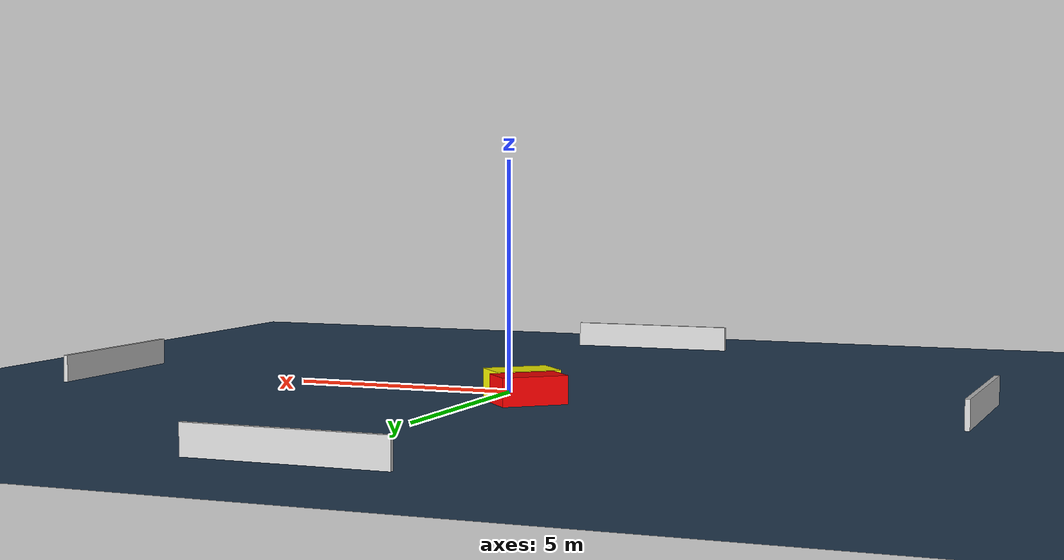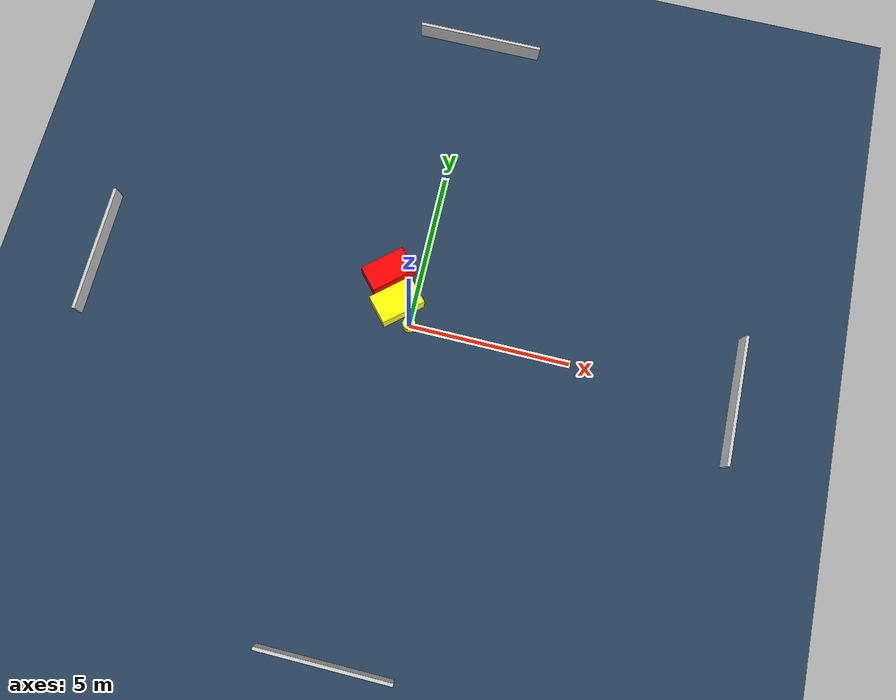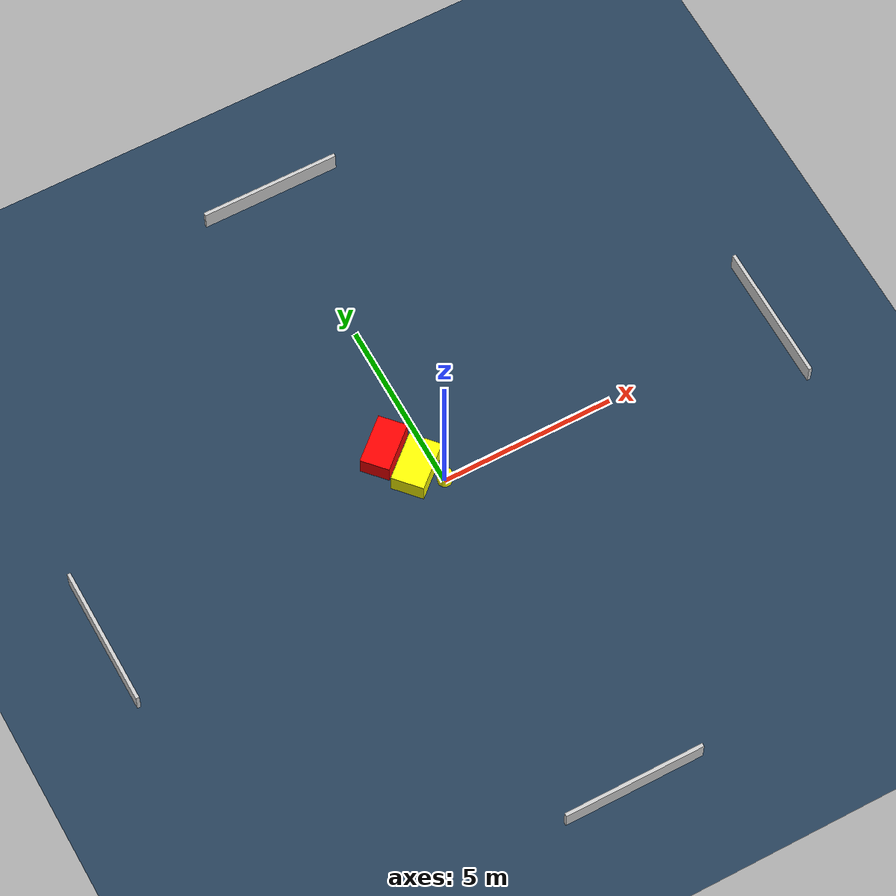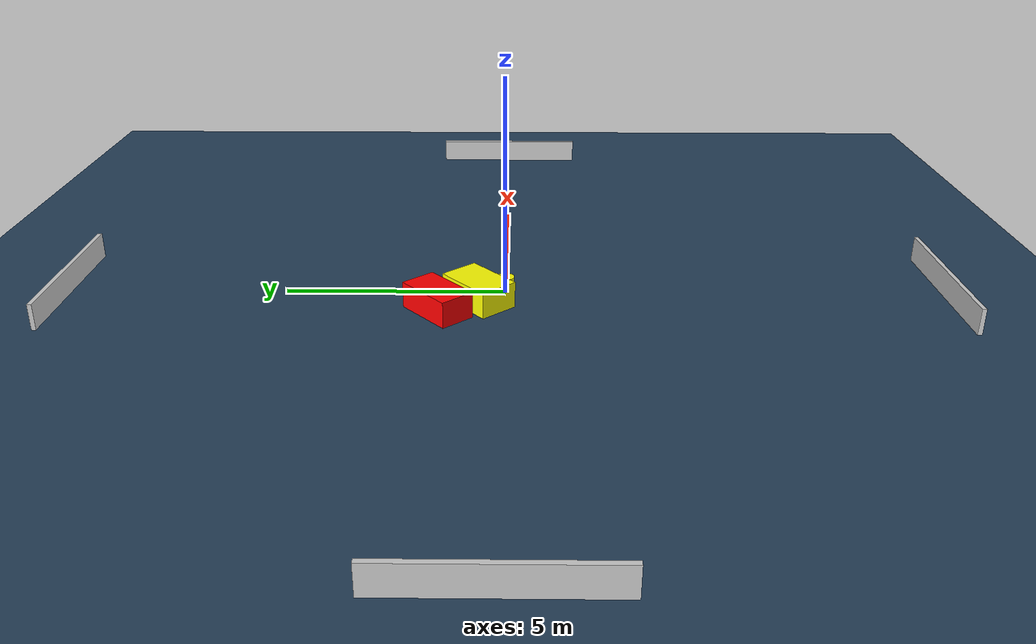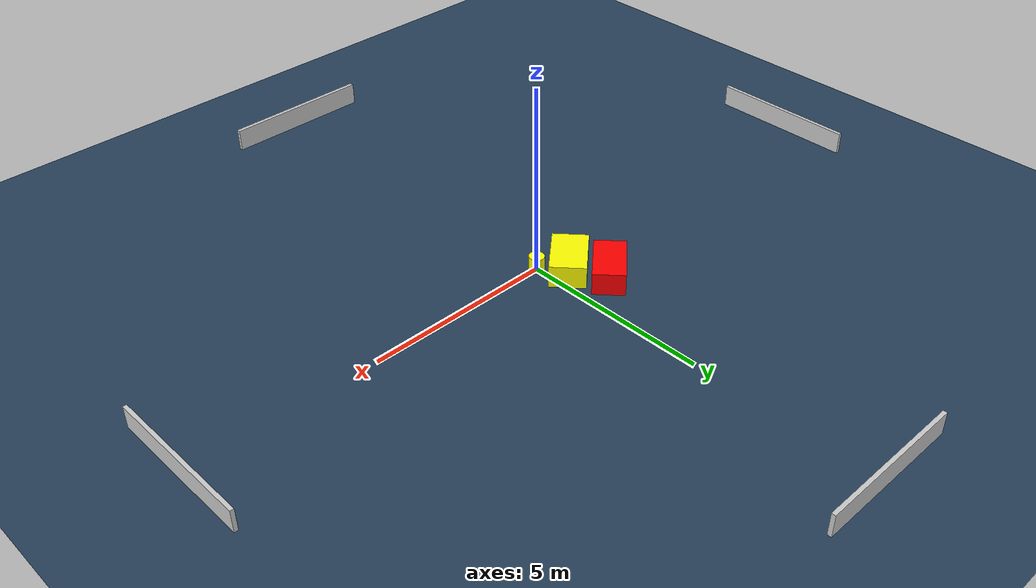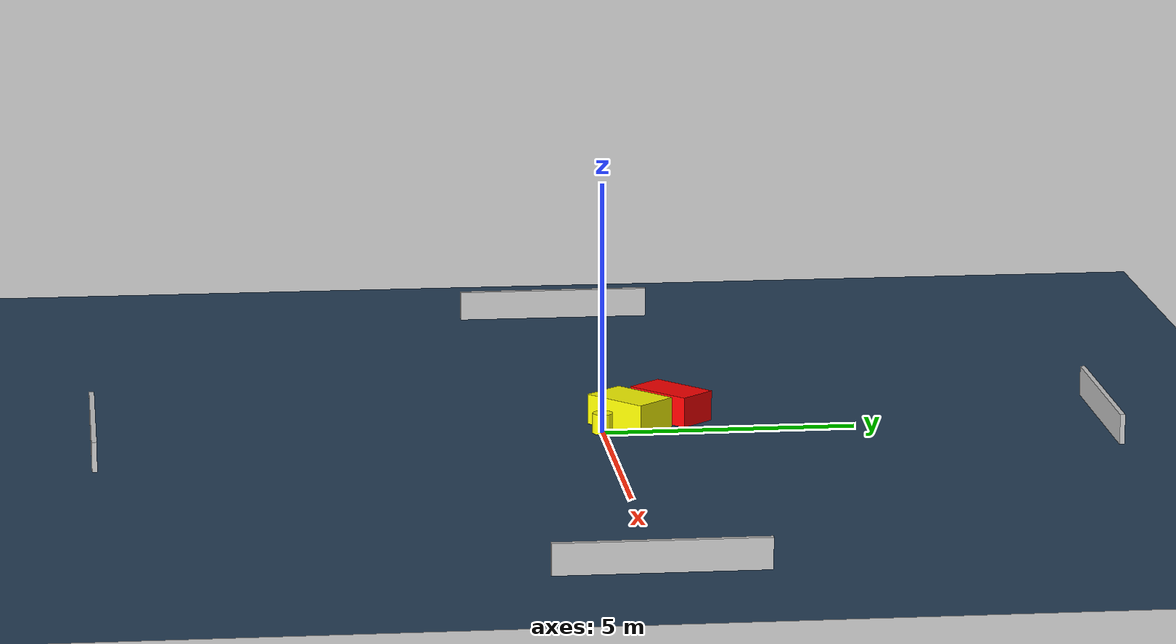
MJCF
<?xml version="1.0" ?>
<mujoco model="generated_environment">
  <option timestep="0.01" integrator="RK4" cone="elliptic"/>
  <default>
    <geom density="1"/>
  </default>
  <asset>
    <texture builtin="gradient" height="3072" name="skybox" rgb1="0.3 0.5 0.7" rgb2="0 0 0" type="skybox" width="512"/>
    <texture builtin="checker" height="300" name="groundplane" rgb1="0.2 0.3 0.4" rgb2="0.1 0.2 0.3" type="2d" width="300"/>
    <material name="groundplane" reflectance="0.2" texrepeat="5 5" texture="groundplane"/>
  </asset>
  <worldbody>
    <light dir="0 0 -1" directional="true" pos="0 0 1.5"/>
    <geom condim="3" friction="0.5 0.005 0.001" material="groundplane" name="floor" pos="0 0 0" size="0 0 0.05" type="plane"/>
    <body name="walls">
      <geom name="wall_1" condim="4" pos="-10.0 0.0 0.3" rgba="0.800000011920929 0.800000011920929 0.800000011920929 1.0" size="0.05 2.0 0.3" type="box"/>
      <geom name="wall_2" condim="4" pos="10.0 0.0 0.3" rgba="0.800000011920929 0.800000011920929 0.800000011920929 1.0" size="0.05 2.0 0.3" type="box"/>
      <geom name="wall_3" condim="4" pos="0.0 -10.0 0.3" rgba="0.800000011920929 0.800000011920929 0.800000011920929 1.0" size="2.0 0.05 0.3" type="box"/>
      <geom name="wall_4" condim="4" pos="0.0 10.0 0.3" rgba="0.800000011920929 0.800000011920929 0.800000011920929 1.0" size="2.0 0.05 0.3" type="box"/>
    </body>
    <body name="robot">
      <joint name="joint_x" type="slide" pos="0 0 0" axis="1 0 0"/>
      <joint name="joint_y" type="slide" pos="0 0 0" axis="0 1 0"/>
      <geom name="robot" type="cylinder" pos="0.0 0.0 0.2" size="0.2 0.2 0.0" mass="5.0" friction="1.0 0.005 0.0001" condim="4" rgba="1.0 1.0 0.0 1.0"/>
    </body>
    <body name="obstacle_1_movable">
      <geom name="obstacle_1_movable" condim="4" pos="-0.525327014799784 0.5937647302604052 0.3" euler="0 0 221.53992370167856" friction="0.0 0.005 0.001" rgba="1.0 1.0 0.0 1.0" size="0.7072739140916224 0.4620321813093998 0.3" type="box" mass="0.1"/>
      <joint type="free"/>
    </body>
    <body name="obstacle_2_static">
      <geom name="obstacle_2_static" condim="4" pos="-1.0266977500832584 1.4793831535187412 0.3" euler="0 0 311.77854437918563" friction="0.0 0.005 0.001" rgba="1.0 0.0 0.0 1.0" size="0.41245349607220755 0.7126125995118251 0.3" type="box"/>
    </body>
  </worldbody>
  <actuator>
    <motor name="actuator_x" joint="joint_x" gear="1" ctrlrange="-1 1"/>
    <motor name="actuator_y" joint="joint_y" gear="1" ctrlrange="-1 1"/>
  </actuator>
</mujoco>
